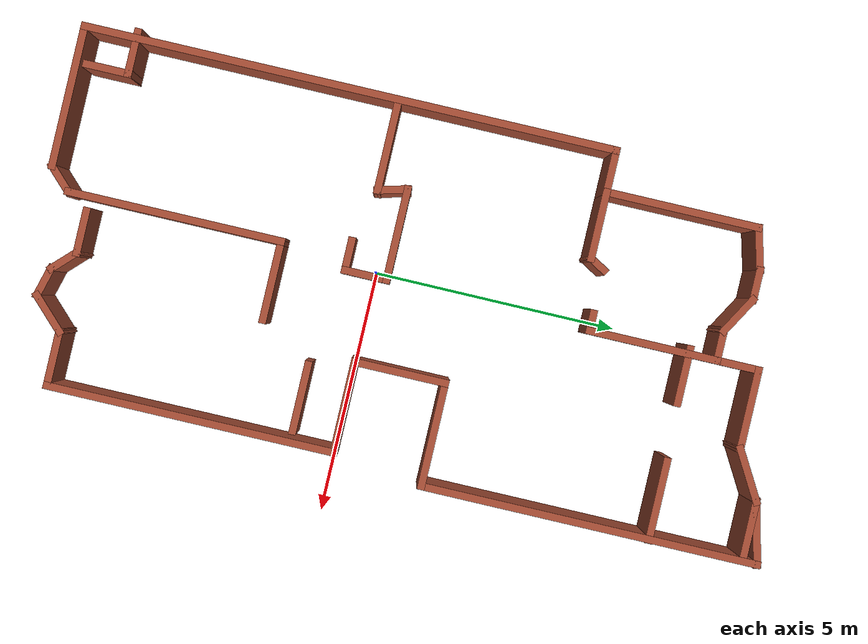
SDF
<?xml version='1.0'?>
<sdf version='1.6'>
  <model name='map_51'>
    <pose frame=''>0.177282 0.966006 0 0 -0 0</pose>
    <link name='Wall_0'>
      <collision name='Wall_0_Collision'>
        <geometry>
          <box>
            <size>1.25 0.15 2.5</size>
          </box>
        </geometry>
        <pose frame=''>0 0 1.25 0 -0 0</pose>
      </collision>
      <visual name='Wall_0_Visual'>
        <pose frame=''>0 0 1.25 0 -0 0</pose>
        <geometry>
          <box>
            <size>1.25 0.15 2.5</size>
          </box>
        </geometry>
        <material>
          <script>
            <uri>file://media/materials/scripts/gazebo.material</uri>
            <name>Gazebo/Bricks</name>
          </script>
          <ambient>1 1 1 1</ambient>
        </material>
        <meta>
          <layer>0</layer>
        </meta>
      </visual>
      <pose frame=''>3.07724 7.43168 0 0 -0 3.14159</pose>
    </link>
    <link name='Wall_1'>
      <collision name='Wall_1_Collision'>
        <geometry>
          <box>
            <size>1.25 0.15 2.5</size>
          </box>
        </geometry>
        <pose frame=''>0 0 1.25 0 -0 0</pose>
      </collision>
      <visual name='Wall_1_Visual'>
        <pose frame=''>0 0 1.25 0 -0 0</pose>
        <geometry>
          <box>
            <size>1.25 0.15 2.5</size>
          </box>
        </geometry>
        <material>
          <script>
            <uri>file://media/materials/scripts/gazebo.material</uri>
            <name>Gazebo/Bricks</name>
          </script>
          <ambient>1 1 1 1</ambient>
        </material>
        <meta>
          <layer>0</layer>
        </meta>
      </visual>
      <pose frame=''>2.05092 7.15668 0 0 -0 -2.61799</pose>
    </link>
    <link name='Wall_10'>
      <collision name='Wall_10_Collision'>
        <geometry>
          <box>
            <size>11 0.15 2.5</size>
          </box>
        </geometry>
        <pose frame=''>0 0 1.25 0 -0 0</pose>
      </collision>
      <visual name='Wall_10_Visual'>
        <pose frame=''>0 0 1.25 0 -0 0</pose>
        <geometry>
          <box>
            <size>11 0.15 2.5</size>
          </box>
        </geometry>
        <material>
          <script>
            <uri>file://media/materials/scripts/gazebo.material</uri>
            <name>Gazebo/Bricks</name>
          </script>
          <ambient>1 1 1 1</ambient>
        </material>
        <meta>
          <layer>0</layer>
        </meta>
      </visual>
      <pose frame=''>-3.63255 -2.28832 0 0 -0 -1.5708</pose>
    </link>
    <link name='Wall_12'>
      <collision name='Wall_12_Collision'>
        <geometry>
          <box>
            <size>3 0.15 2.5</size>
          </box>
        </geometry>
        <pose frame=''>0 0 1.25 0 -0 0</pose>
      </collision>
      <visual name='Wall_12_Visual'>
        <pose frame=''>0 0 1.25 0 -0 0</pose>
        <geometry>
          <box>
            <size>3 0.15 2.5</size>
          </box>
        </geometry>
        <material>
          <script>
            <uri>file://media/materials/scripts/gazebo.material</uri>
            <name>Gazebo/Bricks</name>
          </script>
          <ambient>1 1 1 1</ambient>
        </material>
        <meta>
          <layer>0</layer>
        </meta>
      </visual>
      <pose frame=''>-2.20755 -7.71332 0 0 -0 0</pose>
    </link>
    <link name='Wall_13'>
      <collision name='Wall_13_Collision'>
        <geometry>
          <box>
            <size>0.75 0.15 2.5</size>
          </box>
        </geometry>
        <pose frame=''>0 0 1.25 0 -0 0</pose>
      </collision>
      <visual name='Wall_13_Visual'>
        <pose frame=''>0 0 1.25 0 -0 0</pose>
        <geometry>
          <box>
            <size>0.75 0.15 2.5</size>
          </box>
        </geometry>
        <material>
          <script>
            <uri>file://media/materials/scripts/gazebo.material</uri>
            <name>Gazebo/Bricks</name>
          </script>
          <ambient>1 1 1 1</ambient>
        </material>
        <meta>
          <layer>0</layer>
        </meta>
      </visual>
      <pose frame=''>-0.570418 -7.50118 0 0 -0 0.785398</pose>
    </link>
    <link name='Wall_14'>
      <collision name='Wall_14_Collision'>
        <geometry>
          <box>
            <size>4.5 0.15 2.5</size>
          </box>
        </geometry>
        <pose frame=''>0 0 1.25 0 -0 0</pose>
      </collision>
      <visual name='Wall_14_Visual'>
        <pose frame=''>0 0 1.25 0 -0 0</pose>
        <geometry>
          <box>
            <size>4.5 0.15 2.5</size>
          </box>
        </geometry>
        <material>
          <script>
            <uri>file://media/materials/scripts/gazebo.material</uri>
            <name>Gazebo/Bricks</name>
          </script>
          <ambient>1 1 1 1</ambient>
        </material>
        <meta>
          <layer>0</layer>
        </meta>
      </visual>
      <pose frame=''>-0.358286 -5.11405 0 0 -0 1.5708</pose>
    </link>
    <link name='Wall_15'>
      <collision name='Wall_15_Collision'>
        <geometry>
          <box>
            <size>1.75 0.15 2.5</size>
          </box>
        </geometry>
        <pose frame=''>0 0 1.25 0 -0 0</pose>
      </collision>
      <visual name='Wall_15_Visual'>
        <pose frame=''>0 0 1.25 0 -0 0</pose>
        <geometry>
          <box>
            <size>1.75 0.15 2.5</size>
          </box>
        </geometry>
        <material>
          <script>
            <uri>file://media/materials/scripts/gazebo.material</uri>
            <name>Gazebo/Bricks</name>
          </script>
          <ambient>1 1 1 1</ambient>
        </material>
        <meta>
          <layer>0</layer>
        </meta>
      </visual>
      <pose frame=''>0.441714 -2.93905 0 0 -0 0</pose>
    </link>
    <link name='Wall_18'>
      <collision name='Wall_18_Collision'>
        <geometry>
          <box>
            <size>1 0.15 2.5</size>
          </box>
        </geometry>
        <pose frame=''>0 0 1.25 0 -0 0</pose>
      </collision>
      <visual name='Wall_18_Visual'>
        <pose frame=''>0 0 1.25 0 -0 0</pose>
        <geometry>
          <box>
            <size>1 0.15 2.5</size>
          </box>
        </geometry>
        <material>
          <script>
            <uri>file://media/materials/scripts/gazebo.material</uri>
            <name>Gazebo/Bricks</name>
          </script>
          <ambient>1 1 1 1</ambient>
        </material>
        <meta>
          <layer>0</layer>
        </meta>
      </visual>
      <pose frame=''>-3.33111 -6.6582 0 0 -0 0</pose>
    </link>
    <link name='Wall_19'>
      <collision name='Wall_19_Collision'>
        <geometry>
          <box>
            <size>1 0.15 2.5</size>
          </box>
        </geometry>
        <pose frame=''>0 0 1.25 0 -0 0</pose>
      </collision>
      <visual name='Wall_19_Visual'>
        <pose frame=''>0 0 1.25 0 -0 0</pose>
        <geometry>
          <box>
            <size>1 0.15 2.5</size>
          </box>
        </geometry>
        <material>
          <script>
            <uri>file://media/materials/scripts/gazebo.material</uri>
            <name>Gazebo/Bricks</name>
          </script>
          <ambient>1 1 1 1</ambient>
        </material>
        <meta>
          <layer>0</layer>
        </meta>
      </visual>
      <pose frame=''>-2.90611 -7.0832 0 0 -0 -1.5708</pose>
    </link>
    <link name='Wall_2'>
      <collision name='Wall_2_Collision'>
        <geometry>
          <box>
            <size>1.75 0.15 2.5</size>
          </box>
        </geometry>
        <pose frame=''>0 0 1.25 0 -0 0</pose>
      </collision>
      <visual name='Wall_2_Visual'>
        <pose frame=''>0 0 1.25 0 -0 0</pose>
        <geometry>
          <box>
            <size>1.75 0.15 2.5</size>
          </box>
        </geometry>
        <material>
          <script>
            <uri>file://media/materials/scripts/gazebo.material</uri>
            <name>Gazebo/Bricks</name>
          </script>
          <ambient>1 1 1 1</ambient>
        </material>
        <meta>
          <layer>0</layer>
        </meta>
      </visual>
      <pose frame=''>0.774609 6.88168 0 0 -0 3.14159</pose>
    </link>
    <link name='Wall_21'>
      <collision name='Wall_21_Collision'>
        <geometry>
          <box>
            <size>1 0.15 2.5</size>
          </box>
        </geometry>
        <pose frame=''>0 0 1.25 0 -0 0</pose>
      </collision>
      <visual name='Wall_21_Visual'>
        <pose frame=''>0 0 1.25 0 -0 0</pose>
        <geometry>
          <box>
            <size>1 0.15 2.5</size>
          </box>
        </geometry>
        <material>
          <script>
            <uri>file://media/materials/scripts/gazebo.material</uri>
            <name>Gazebo/Bricks</name>
          </script>
          <ambient>1 1 1 1</ambient>
        </material>
        <meta>
          <layer>0</layer>
        </meta>
      </visual>
      <pose frame=''>0.360564 -6.84279 0 0 -0 0</pose>
    </link>
    <link name='Wall_22'>
      <collision name='Wall_22_Collision'>
        <geometry>
          <box>
            <size>0.75 0.15 2.5</size>
          </box>
        </geometry>
        <pose frame=''>0 0 1.25 0 -0 0</pose>
      </collision>
      <visual name='Wall_22_Visual'>
        <pose frame=''>0 0 1.25 0 -0 0</pose>
        <geometry>
          <box>
            <size>0.75 0.15 2.5</size>
          </box>
        </geometry>
        <material>
          <script>
            <uri>file://media/materials/scripts/gazebo.material</uri>
            <name>Gazebo/Bricks</name>
          </script>
          <ambient>1 1 1 1</ambient>
        </material>
        <meta>
          <layer>0</layer>
        </meta>
      </visual>
      <pose frame=''>0.997696 -7.05492 0 0 -0 -0.785398</pose>
    </link>
    <link name='Wall_23'>
      <collision name='Wall_23_Collision'>
        <geometry>
          <box>
            <size>0.75 0.15 2.5</size>
          </box>
        </geometry>
        <pose frame=''>0 0 1.25 0 -0 0</pose>
      </collision>
      <visual name='Wall_23_Visual'>
        <pose frame=''>0 0 1.25 0 -0 0</pose>
        <geometry>
          <box>
            <size>0.75 0.15 2.5</size>
          </box>
        </geometry>
        <material>
          <script>
            <uri>file://media/materials/scripts/gazebo.material</uri>
            <name>Gazebo/Bricks</name>
          </script>
          <ambient>1 1 1 1</ambient>
        </material>
        <meta>
          <layer>0</layer>
        </meta>
      </visual>
      <pose frame=''>1.49961 -7.3447 0 0 -0 -0.261799</pose>
    </link>
    <link name='Wall_24'>
      <collision name='Wall_24_Collision'>
        <geometry>
          <box>
            <size>1 0.15 2.5</size>
          </box>
        </geometry>
        <pose frame=''>0 0 1.25 0 -0 0</pose>
      </collision>
      <visual name='Wall_24_Visual'>
        <pose frame=''>0 0 1.25 0 -0 0</pose>
        <geometry>
          <box>
            <size>1 0.15 2.5</size>
          </box>
        </geometry>
        <material>
          <script>
            <uri>file://media/materials/scripts/gazebo.material</uri>
            <name>Gazebo/Bricks</name>
          </script>
          <ambient>1 1 1 1</ambient>
        </material>
        <meta>
          <layer>0</layer>
        </meta>
      </visual>
      <pose frame=''>2.0899 -7.12182 0 0 -0 0.785398</pose>
    </link>
    <link name='Wall_25'>
      <collision name='Wall_25_Collision'>
        <geometry>
          <box>
            <size>1.25 0.15 2.5</size>
          </box>
        </geometry>
        <pose frame=''>0 0 1.25 0 -0 0</pose>
      </collision>
      <visual name='Wall_25_Visual'>
        <pose frame=''>0 0 1.25 0 -0 0</pose>
        <geometry>
          <box>
            <size>1.25 0.15 2.5</size>
          </box>
        </geometry>
        <material>
          <script>
            <uri>file://media/materials/scripts/gazebo.material</uri>
            <name>Gazebo/Bricks</name>
          </script>
          <ambient>1 1 1 1</ambient>
        </material>
        <meta>
          <layer>0</layer>
        </meta>
      </visual>
      <pose frame=''>2.94042 -6.8213 0 0 -0 0</pose>
    </link>
    <link name='Wall_26'>
      <collision name='Wall_26_Collision'>
        <geometry>
          <box>
            <size>6 0.15 2.5</size>
          </box>
        </geometry>
        <pose frame=''>0 0 1.25 0 -0 0</pose>
      </collision>
      <visual name='Wall_26_Visual'>
        <pose frame=''>0 0 1.25 0 -0 0</pose>
        <geometry>
          <box>
            <size>6 0.15 2.5</size>
          </box>
        </geometry>
        <material>
          <script>
            <uri>file://media/materials/scripts/gazebo.material</uri>
            <name>Gazebo/Bricks</name>
          </script>
          <ambient>1 1 1 1</ambient>
        </material>
        <meta>
          <layer>0</layer>
        </meta>
      </visual>
      <pose frame=''>3.49042 -3.8963 0 0 -0 1.5708</pose>
    </link>
    <link name='Wall_27'>
      <collision name='Wall_27_Collision'>
        <geometry>
          <box>
            <size>2 0.15 2.5</size>
          </box>
        </geometry>
        <pose frame=''>0 0 1.25 0 -0 0</pose>
      </collision>
      <visual name='Wall_27_Visual'>
        <pose frame=''>0 0 1.25 0 -0 0</pose>
        <geometry>
          <box>
            <size>2 0.15 2.5</size>
          </box>
        </geometry>
        <material>
          <script>
            <uri>file://media/materials/scripts/gazebo.material</uri>
            <name>Gazebo/Bricks</name>
          </script>
          <ambient>1 1 1 1</ambient>
        </material>
        <meta>
          <layer>0</layer>
        </meta>
      </visual>
      <pose frame=''>2.56542 -0.971302 0 0 -0 3.14159</pose>
    </link>
    <link name='Wall_28'>
      <collision name='Wall_28_Collision'>
        <geometry>
          <box>
            <size>2 0.15 2.5</size>
          </box>
        </geometry>
        <pose frame=''>0 0 1.25 0 -0 0</pose>
      </collision>
      <visual name='Wall_28_Visual'>
        <pose frame=''>0 0 1.25 0 -0 0</pose>
        <geometry>
          <box>
            <size>2 0.15 2.5</size>
          </box>
        </geometry>
        <material>
          <script>
            <uri>file://media/materials/scripts/gazebo.material</uri>
            <name>Gazebo/Bricks</name>
          </script>
          <ambient>1 1 1 1</ambient>
        </material>
        <meta>
          <layer>0</layer>
        </meta>
      </visual>
      <pose frame=''>1.64042 -0.046302 0 0 -0 1.5708</pose>
    </link>
    <link name='Wall_29'>
      <collision name='Wall_29_Collision'>
        <geometry>
          <box>
            <size>2.25 0.15 2.5</size>
          </box>
        </geometry>
        <pose frame=''>0 0 1.25 0 -0 0</pose>
      </collision>
      <visual name='Wall_29_Visual'>
        <pose frame=''>0 0 1.25 0 -0 0</pose>
        <geometry>
          <box>
            <size>2.25 0.15 2.5</size>
          </box>
        </geometry>
        <material>
          <script>
            <uri>file://media/materials/scripts/gazebo.material</uri>
            <name>Gazebo/Bricks</name>
          </script>
          <ambient>1 1 1 1</ambient>
        </material>
        <meta>
          <layer>0</layer>
        </meta>
      </visual>
      <pose frame=''>2.69042 0.878698 0 0 -0 0</pose>
    </link>
    <link name='Wall_3'>
      <collision name='Wall_3_Collision'>
        <geometry>
          <box>
            <size>1 0.15 2.5</size>
          </box>
        </geometry>
        <pose frame=''>0 0 1.25 0 -0 0</pose>
      </collision>
      <visual name='Wall_3_Visual'>
        <pose frame=''>0 0 1.25 0 -0 0</pose>
        <geometry>
          <box>
            <size>1 0.15 2.5</size>
          </box>
        </geometry>
        <material>
          <script>
            <uri>file://media/materials/scripts/gazebo.material</uri>
            <name>Gazebo/Bricks</name>
          </script>
          <ambient>1 1 1 1</ambient>
        </material>
        <meta>
          <layer>0</layer>
        </meta>
      </visual>
      <pose frame=''>-0.025391 6.45668 0 0 -0 -1.5708</pose>
    </link>
    <link name='Wall_30'>
      <collision name='Wall_30_Collision'>
        <geometry>
          <box>
            <size>7 0.15 2.5</size>
          </box>
        </geometry>
        <pose frame=''>0 0 1.25 0 -0 0</pose>
      </collision>
      <visual name='Wall_30_Visual'>
        <pose frame=''>0 0 1.25 0 -0 0</pose>
        <geometry>
          <box>
            <size>7 0.15 2.5</size>
          </box>
        </geometry>
        <material>
          <script>
            <uri>file://media/materials/scripts/gazebo.material</uri>
            <name>Gazebo/Bricks</name>
          </script>
          <ambient>1 1 1 1</ambient>
        </material>
        <meta>
          <layer>0</layer>
        </meta>
      </visual>
      <pose frame=''>3.74042 4.3037 0 0 -0 1.5708</pose>
    </link>
    <link name='Wall_31'>
      <collision name='Wall_31_Collision'>
        <geometry>
          <box>
            <size>1.39902 0.15 2.5</size>
          </box>
        </geometry>
        <pose frame=''>0 0 1.25 0 -0 0</pose>
      </collision>
      <visual name='Wall_31_Visual'>
        <pose frame=''>0 0 1.25 0 -0 0</pose>
        <geometry>
          <box>
            <size>1.39902 0.15 2.5</size>
          </box>
        </geometry>
        <material>
          <script>
            <uri>file://media/materials/scripts/gazebo.material</uri>
            <name>Gazebo/Bricks</name>
          </script>
          <ambient>1 1 1 1</ambient>
        </material>
        <meta>
          <layer>0</layer>
        </meta>
      </visual>
      <pose frame=''>3.13383 7.58019 0 0 -0 -2.90149</pose>
    </link>
    <link name='Wall_34'>
      <collision name='Wall_34_Collision'>
        <geometry>
          <box>
            <size>1.5 0.15 2.5</size>
          </box>
        </geometry>
        <pose frame=''>0 0 1.25 0 -0 0</pose>
      </collision>
      <visual name='Wall_34_Visual'>
        <pose frame=''>0 0 1.25 0 -0 0</pose>
        <geometry>
          <box>
            <size>1.5 0.15 2.5</size>
          </box>
        </geometry>
        <material>
          <script>
            <uri>file://media/materials/scripts/gazebo.material</uri>
            <name>Gazebo/Bricks</name>
          </script>
          <ambient>1 1 1 1</ambient>
        </material>
        <meta>
          <layer>0</layer>
        </meta>
      </visual>
      <pose frame=''>2.57946 -1.85903 0 0 -0 0</pose>
    </link>
    <link name='Wall_36'>
      <collision name='Wall_36_Collision'>
        <geometry>
          <box>
            <size>2 0.15 2.5</size>
          </box>
        </geometry>
        <pose frame=''>0 0 1.25 0 -0 0</pose>
      </collision>
      <visual name='Wall_36_Visual'>
        <pose frame=''>0 0 1.25 0 -0 0</pose>
        <geometry>
          <box>
            <size>2 0.15 2.5</size>
          </box>
        </geometry>
        <material>
          <script>
            <uri>file://media/materials/scripts/gazebo.material</uri>
            <name>Gazebo/Bricks</name>
          </script>
          <ambient>1 1 1 1</ambient>
        </material>
        <meta>
          <layer>0</layer>
        </meta>
      </visual>
      <pose frame=''>-2.70805 -1.30528 0 0 -0 0</pose>
    </link>
    <link name='Wall_37'>
      <collision name='Wall_37_Collision'>
        <geometry>
          <box>
            <size>0.75 0.15 2.5</size>
          </box>
        </geometry>
        <pose frame=''>0 0 1.25 0 -0 0</pose>
      </collision>
      <visual name='Wall_37_Visual'>
        <pose frame=''>0 0 1.25 0 -0 0</pose>
        <geometry>
          <box>
            <size>0.75 0.15 2.5</size>
          </box>
        </geometry>
        <material>
          <script>
            <uri>file://media/materials/scripts/gazebo.material</uri>
            <name>Gazebo/Bricks</name>
          </script>
          <ambient>1 1 1 1</ambient>
        </material>
        <meta>
          <layer>0</layer>
        </meta>
      </visual>
      <pose frame=''>-1.8607 -1.0155 0 0 -0 1.8326</pose>
    </link>
    <link name='Wall_38'>
      <collision name='Wall_38_Collision'>
        <geometry>
          <box>
            <size>2 0.15 2.5</size>
          </box>
        </geometry>
        <pose frame=''>0 0 1.25 0 -0 0</pose>
      </collision>
      <visual name='Wall_38_Visual'>
        <pose frame=''>0 0 1.25 0 -0 0</pose>
        <geometry>
          <box>
            <size>2 0.15 2.5</size>
          </box>
        </geometry>
        <material>
          <script>
            <uri>file://media/materials/scripts/gazebo.material</uri>
            <name>Gazebo/Bricks</name>
          </script>
          <ambient>1 1 1 1</ambient>
        </material>
        <meta>
          <layer>0</layer>
        </meta>
      </visual>
      <pose frame=''>-1.01334 -0.725723 0 0 -0 0</pose>
    </link>
    <link name='Wall_39'>
      <collision name='Wall_39_Collision'>
        <geometry>
          <box>
            <size>1 0.15 2.5</size>
          </box>
        </geometry>
        <pose frame=''>0 0 1.25 0 -0 0</pose>
      </collision>
      <visual name='Wall_39_Visual'>
        <pose frame=''>0 0 1.25 0 -0 0</pose>
        <geometry>
          <box>
            <size>1 0.15 2.5</size>
          </box>
        </geometry>
        <material>
          <script>
            <uri>file://media/materials/scripts/gazebo.material</uri>
            <name>Gazebo/Bricks</name>
          </script>
          <ambient>1 1 1 1</ambient>
        </material>
        <meta>
          <layer>0</layer>
        </meta>
      </visual>
      <pose frame=''>-0.088344 -1.15072 0 0 -0 -1.5708</pose>
    </link>
    <link name='Wall_4'>
      <collision name='Wall_4_Collision'>
        <geometry>
          <box>
            <size>0.75 0.15 2.5</size>
          </box>
        </geometry>
        <pose frame=''>0 0 1.25 0 -0 0</pose>
      </collision>
      <visual name='Wall_4_Visual'>
        <pose frame=''>0 0 1.25 0 -0 0</pose>
        <geometry>
          <box>
            <size>0.75 0.15 2.5</size>
          </box>
        </geometry>
        <material>
          <script>
            <uri>file://media/materials/scripts/gazebo.material</uri>
            <name>Gazebo/Bricks</name>
          </script>
          <ambient>1 1 1 1</ambient>
        </material>
        <meta>
          <layer>0</layer>
        </meta>
      </visual>
      <pose frame=''>-0.325391 6.03168 0 0 -0 3.14159</pose>
    </link>
    <link name='Wall_42'>
      <collision name='Wall_42_Collision'>
        <geometry>
          <box>
            <size>1.75 0.15 2.5</size>
          </box>
        </geometry>
        <pose frame=''>0 0 1.25 0 -0 0</pose>
      </collision>
      <visual name='Wall_42_Visual'>
        <pose frame=''>0 0 1.25 0 -0 0</pose>
        <geometry>
          <box>
            <size>1.75 0.15 2.5</size>
          </box>
        </geometry>
        <material>
          <script>
            <uri>file://media/materials/scripts/gazebo.material</uri>
            <name>Gazebo/Bricks</name>
          </script>
          <ambient>1 1 1 1</ambient>
        </material>
        <meta>
          <layer>0</layer>
        </meta>
      </visual>
      <pose frame=''>2.95029 5.52432 0 0 -0 3.14159</pose>
    </link>
    <link name='Wall_45'>
      <collision name='Wall_45_Collision'>
        <geometry>
          <box>
            <size>1.25 0.15 2.5</size>
          </box>
        </geometry>
        <pose frame=''>0 0 1.25 0 -0 0</pose>
      </collision>
      <visual name='Wall_45_Visual'>
        <pose frame=''>0 0 1.25 0 -0 0</pose>
        <geometry>
          <box>
            <size>1.25 0.15 2.5</size>
          </box>
        </geometry>
        <material>
          <script>
            <uri>file://media/materials/scripts/gazebo.material</uri>
            <name>Gazebo/Bricks</name>
          </script>
          <ambient>1 1 1 1</ambient>
        </material>
        <meta>
          <layer>0</layer>
        </meta>
      </visual>
      <pose frame=''>0.424036 5.46279 0 0 -0 0</pose>
    </link>
    <link name='Wall_47'>
      <collision name='Wall_47_Collision'>
        <geometry>
          <box>
            <size>2.75 0.15 2.5</size>
          </box>
        </geometry>
        <pose frame=''>0 0 1.25 0 -0 0</pose>
      </collision>
      <visual name='Wall_47_Visual'>
        <pose frame=''>0 0 1.25 0 -0 0</pose>
        <geometry>
          <box>
            <size>2.75 0.15 2.5</size>
          </box>
        </geometry>
        <material>
          <script>
            <uri>file://media/materials/scripts/gazebo.material</uri>
            <name>Gazebo/Bricks</name>
          </script>
          <ambient>1 1 1 1</ambient>
        </material>
        <meta>
          <layer>0</layer>
        </meta>
      </visual>
      <pose frame=''>-0.025391 4.73168 0 0 -0 -1.5708</pose>
    </link>
    <link name='Wall_48'>
      <collision name='Wall_48_Collision'>
        <geometry>
          <box>
            <size>0.5 0.15 2.5</size>
          </box>
        </geometry>
        <pose frame=''>0 0 1.25 0 -0 0</pose>
      </collision>
      <visual name='Wall_48_Visual'>
        <pose frame=''>0 0 1.25 0 -0 0</pose>
        <geometry>
          <box>
            <size>0.5 0.15 2.5</size>
          </box>
        </geometry>
        <material>
          <script>
            <uri>file://media/materials/scripts/gazebo.material</uri>
            <name>Gazebo/Bricks</name>
          </script>
          <ambient>1 1 1 1</ambient>
        </material>
        <meta>
          <layer>0</layer>
        </meta>
      </visual>
      <pose frame=''>-0.200391 3.43168 0 0 -0 3.14159</pose>
    </link>
    <link name='Wall_5'>
      <collision name='Wall_5_Collision'>
        <geometry>
          <box>
            <size>1 0.15 2.5</size>
          </box>
        </geometry>
        <pose frame=''>0 0 1.25 0 -0 0</pose>
      </collision>
      <visual name='Wall_5_Visual'>
        <pose frame=''>0 0 1.25 0 -0 0</pose>
        <geometry>
          <box>
            <size>1 0.15 2.5</size>
          </box>
        </geometry>
        <material>
          <script>
            <uri>file://media/materials/scripts/gazebo.material</uri>
            <name>Gazebo/Bricks</name>
          </script>
          <ambient>1 1 1 1</ambient>
        </material>
        <meta>
          <layer>0</layer>
        </meta>
      </visual>
      <pose frame=''>-0.993452 6.24418 0 0 -0 2.61799</pose>
    </link>
    <link name='Wall_50'>
      <collision name='Wall_50_Collision'>
        <geometry>
          <box>
            <size>1.5 0.15 2.5</size>
          </box>
        </geometry>
        <pose frame=''>0 0 1.25 0 -0 0</pose>
      </collision>
      <visual name='Wall_50_Visual'>
        <pose frame=''>0 0 1.25 0 -0 0</pose>
        <geometry>
          <box>
            <size>1.5 0.15 2.5</size>
          </box>
        </geometry>
        <material>
          <script>
            <uri>file://media/materials/scripts/gazebo.material</uri>
            <name>Gazebo/Bricks</name>
          </script>
          <ambient>1 1 1 1</ambient>
        </material>
        <meta>
          <layer>0</layer>
        </meta>
      </visual>
      <pose frame=''>-2.10755 3.13668 0 0 -0 0</pose>
    </link>
    <link name='Wall_51'>
      <collision name='Wall_51_Collision'>
        <geometry>
          <box>
            <size>0.5 0.15 2.5</size>
          </box>
        </geometry>
        <pose frame=''>0 0 1.25 0 -0 0</pose>
      </collision>
      <visual name='Wall_51_Visual'>
        <pose frame=''>0 0 1.25 0 -0 0</pose>
        <geometry>
          <box>
            <size>0.5 0.15 2.5</size>
          </box>
        </geometry>
        <material>
          <script>
            <uri>file://media/materials/scripts/gazebo.material</uri>
            <name>Gazebo/Bricks</name>
          </script>
          <ambient>1 1 1 1</ambient>
        </material>
        <meta>
          <layer>0</layer>
        </meta>
      </visual>
      <pose frame=''>-1.34505 3.28824 0 0 -0 1.0472</pose>
    </link>
    <link name='Wall_53'>
      <collision name='Wall_53_Collision'>
        <geometry>
          <box>
            <size>0.75 0.15 2.5</size>
          </box>
        </geometry>
        <pose frame=''>0 0 1.25 0 -0 0</pose>
      </collision>
      <visual name='Wall_53_Visual'>
        <pose frame=''>0 0 1.25 0 -0 0</pose>
        <geometry>
          <box>
            <size>0.75 0.15 2.5</size>
          </box>
        </geometry>
        <material>
          <script>
            <uri>file://media/materials/scripts/gazebo.material</uri>
            <name>Gazebo/Bricks</name>
          </script>
          <ambient>1 1 1 1</ambient>
        </material>
        <meta>
          <layer>0</layer>
        </meta>
      </visual>
      <pose frame=''>-0.388344 -1.57572 0 0 -0 3.14159</pose>
    </link>
    <link name='Wall_6'>
      <collision name='Wall_6_Collision'>
        <geometry>
          <box>
            <size>0.75 0.15 2.5</size>
          </box>
        </geometry>
        <pose frame=''>0 0 1.25 0 -0 0</pose>
      </collision>
      <visual name='Wall_6_Visual'>
        <pose frame=''>0 0 1.25 0 -0 0</pose>
        <geometry>
          <box>
            <size>0.75 0.15 2.5</size>
          </box>
        </geometry>
        <material>
          <script>
            <uri>file://media/materials/scripts/gazebo.material</uri>
            <name>Gazebo/Bricks</name>
          </script>
          <ambient>1 1 1 1</ambient>
        </material>
        <meta>
          <layer>0</layer>
        </meta>
      </visual>
      <pose frame=''>-1.66151 6.45668 0 0 -0 3.14159</pose>
    </link>
    <link name='Wall_7'>
      <collision name='Wall_7_Collision'>
        <geometry>
          <box>
            <size>1 0.15 2.5</size>
          </box>
        </geometry>
        <pose frame=''>0 0 1.25 0 -0 0</pose>
      </collision>
      <visual name='Wall_7_Visual'>
        <pose frame=''>0 0 1.25 0 -0 0</pose>
        <geometry>
          <box>
            <size>1 0.15 2.5</size>
          </box>
        </geometry>
        <material>
          <script>
            <uri>file://media/materials/scripts/gazebo.material</uri>
            <name>Gazebo/Bricks</name>
          </script>
          <ambient>1 1 1 1</ambient>
        </material>
        <meta>
          <layer>0</layer>
        </meta>
      </visual>
      <pose frame=''>-2.37203 6.34668 0 0 -0 -2.87979</pose>
    </link>
    <link name='Wall_8'>
      <collision name='Wall_8_Collision'>
        <geometry>
          <box>
            <size>3.25 0.15 2.5</size>
          </box>
        </geometry>
        <pose frame=''>0 0 1.25 0 -0 0</pose>
      </collision>
      <visual name='Wall_8_Visual'>
        <pose frame=''>0 0 1.25 0 -0 0</pose>
        <geometry>
          <box>
            <size>3.25 0.15 2.5</size>
          </box>
        </geometry>
        <material>
          <script>
            <uri>file://media/materials/scripts/gazebo.material</uri>
            <name>Gazebo/Bricks</name>
          </script>
          <ambient>1 1 1 1</ambient>
        </material>
        <meta>
          <layer>0</layer>
        </meta>
      </visual>
      <pose frame=''>-2.78255 4.68668 0 0 -0 -1.5708</pose>
    </link>
    <link name='Wall_9'>
      <collision name='Wall_9_Collision'>
        <geometry>
          <box>
            <size>1 0.15 2.5</size>
          </box>
        </geometry>
        <pose frame=''>0 0 1.25 0 -0 0</pose>
      </collision>
      <visual name='Wall_9_Visual'>
        <pose frame=''>0 0 1.25 0 -0 0</pose>
        <geometry>
          <box>
            <size>1 0.15 2.5</size>
          </box>
        </geometry>
        <material>
          <script>
            <uri>file://media/materials/scripts/gazebo.material</uri>
            <name>Gazebo/Bricks</name>
          </script>
          <ambient>1 1 1 1</ambient>
        </material>
        <meta>
          <layer>0</layer>
        </meta>
      </visual>
      <pose frame=''>-3.20755 3.13668 0 0 -0 3.14159</pose>
    </link>
    <static>1</static>
  </model>
</sdf>
